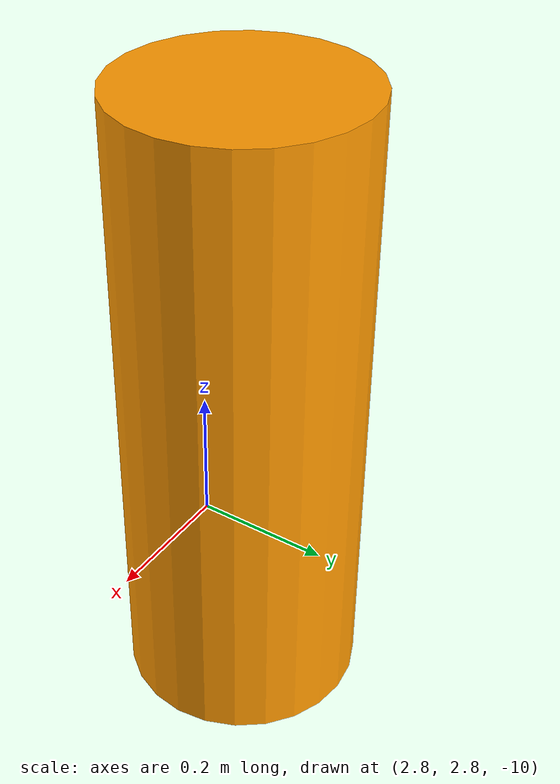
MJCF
<mujoco model="post (v0.1)">
    <compiler inertiafromgeom="true" angle="degree"/>
	<option	timestep="0.01" gravity="0 0 -9.81"/>

	<default>
		<geom contype="1" conaffinity="1"/>
	</default>

    <worldbody>
		<body name="post1" pos="3 3 -10">
			<geom type="cylinder" size=".15 .4" pos="0 0 .4" rgba="1 .6 0 1"/>
		</body>
		<body name="post2" pos="3 3 -10">
			<geom type="cylinder" size=".15 .4" pos="0 0 .4" rgba="1 .6 0 1"/>
		</body>
		<body name="post3" pos="3 3 -10">
			<geom type="cylinder" size=".15 .4" pos="0 0 .4" rgba="1 .6 0 1"/>
		</body>
		<body name="post4" pos="3 3 -10">
			<geom type="cylinder" size=".15 .4" pos="0 0 .4" rgba="1 .6 0 1"/>
		</body>
		<body name="post5" pos="3 3 -10">
			<geom type="cylinder" size=".15 .4" pos="0 0 .4" rgba="1 .6 0 1"/>
		</body>
		<body name="post6" pos="3 3 -10">
			<geom type="cylinder" size=".15 .4" pos="0 0 .4" rgba="1 .6 0 1"/>
		</body>
		<body name="post7" pos="3 3 -10">
			<geom type="cylinder" size=".15 .4" pos="0 0 .4" rgba="1 .6 0 1"/>
		</body>
		<body name="post8" pos="3 3 -10">
			<geom type="cylinder" size=".15 .4" pos="0 0 .4" rgba="1 .6 0 1"/>
		</body>
		<body name="post9" pos="3 3 -10">
			<geom type="cylinder" size=".15 .4" pos="0 0 .4" rgba="1 .6 0 1"/>
		</body>
		<body name="post10" pos="3 3 -10">
			<geom type="cylinder" size=".15 .4" pos="0 0 .4" rgba="1 .6 0 1"/>
		</body>
	</worldbody>
</mujoco>
